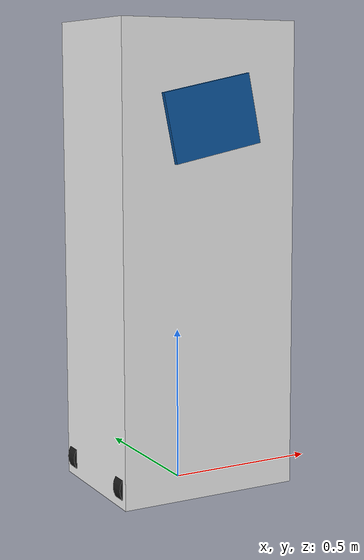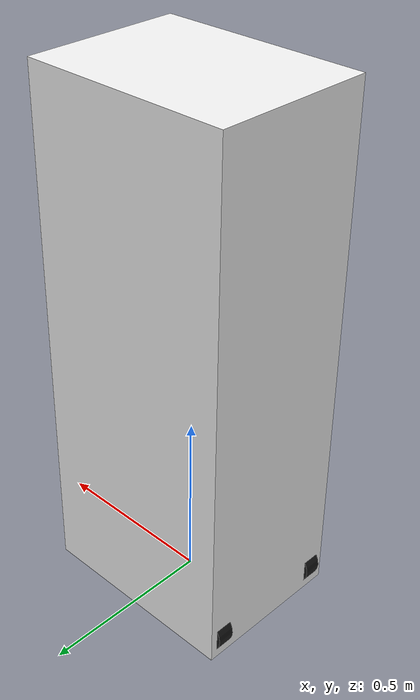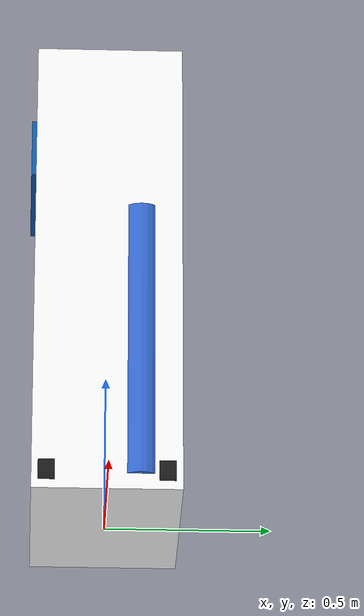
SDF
<?xml version="1.0"?>
<sdf version="1.6">
  <model name="anesthesia_machine">
    <static>true</static>
    <!-- Main body -->
    <link name="body">
      <pose>0 0 0.75 0 0 0</pose>
      <collision name="c"><geometry><box><size>0.6 0.45 1.5</size></box></geometry></collision>
      <visual name="v">
        <geometry><box><size>0.6 0.45 1.5</size></box></geometry>
        <material><ambient>0.95 0.95 0.95 1</ambient><diffuse>0.95 0.95 0.95 1</diffuse></material>
      </visual>
    </link>
    <!-- Screen/display panel -->
    <link name="screen">
      <pose>0 -0.23 1.2 0 -0.2 0</pose>
      <collision name="c"><geometry><box><size>0.3 0.02 0.22</size></box></geometry></collision>
      <visual name="v">
        <geometry><box><size>0.3 0.02 0.22</size></box></geometry>
        <material><ambient>0.1 0.1 0.1 1</ambient><diffuse>0.05 0.35 0.65 1</diffuse></material>
      </visual>
    </link>
    <!-- Gas cylinder -->
    <link name="cylinder">
      <pose>0.25 0.1 0.5 0 0 0</pose>
      <collision name="c"><geometry><cylinder><radius>0.065</radius><length>0.9</length></cylinder></geometry></collision>
      <visual name="v">
        <geometry><cylinder><radius>0.065</radius><length>0.9</length></cylinder></geometry>
        <material><ambient>0.2 0.4 0.8 1</ambient><diffuse>0.2 0.4 0.8 1</diffuse></material>
      </visual>
    </link>
    <!-- Wheels (4) -->
    <link name="w1"><pose>0.25 0.18 0.06 1.5708 0 0</pose>
      <visual name="v"><geometry><cylinder><radius>0.06</radius><length>0.05</length></cylinder></geometry>
        <material><ambient>0.1 0.1 0.1 1</ambient><diffuse>0.1 0.1 0.1 1</diffuse></material></visual>
      <collision name="c"><geometry><cylinder><radius>0.06</radius><length>0.05</length></cylinder></geometry></collision>
    </link>
    <link name="w2"><pose>-0.25 0.18 0.06 1.5708 0 0</pose>
      <visual name="v"><geometry><cylinder><radius>0.06</radius><length>0.05</length></cylinder></geometry>
        <material><ambient>0.1 0.1 0.1 1</ambient><diffuse>0.1 0.1 0.1 1</diffuse></material></visual>
      <collision name="c"><geometry><cylinder><radius>0.06</radius><length>0.05</length></cylinder></geometry></collision>
    </link>
    <link name="w3"><pose>0.25 -0.18 0.06 1.5708 0 0</pose>
      <visual name="v"><geometry><cylinder><radius>0.06</radius><length>0.05</length></cylinder></geometry>
        <material><ambient>0.1 0.1 0.1 1</ambient><diffuse>0.1 0.1 0.1 1</diffuse></material></visual>
      <collision name="c"><geometry><cylinder><radius>0.06</radius><length>0.05</length></cylinder></geometry></collision>
    </link>
    <link name="w4"><pose>-0.25 -0.18 0.06 1.5708 0 0</pose>
      <visual name="v"><geometry><cylinder><radius>0.06</radius><length>0.05</length></cylinder></geometry>
        <material><ambient>0.1 0.1 0.1 1</ambient><diffuse>0.1 0.1 0.1 1</diffuse></material></visual>
      <collision name="c"><geometry><cylinder><radius>0.06</radius><length>0.05</length></cylinder></geometry></collision>
    </link>
  </model>
</sdf>
